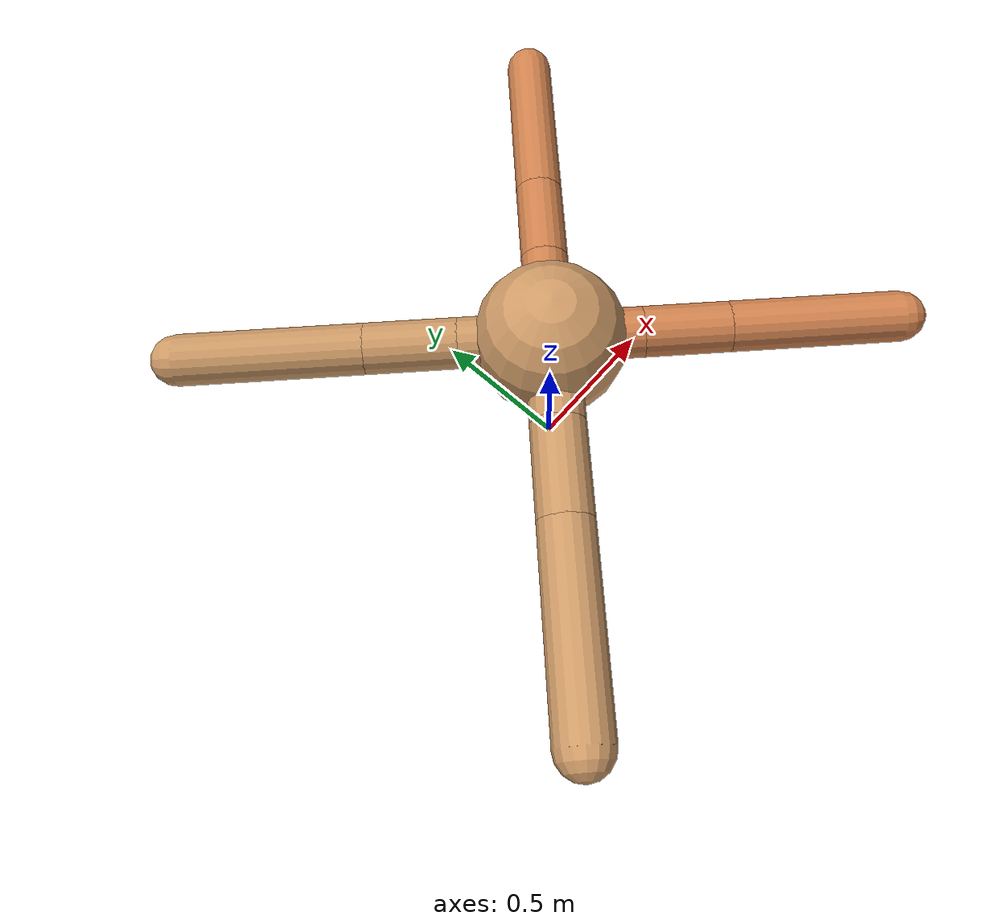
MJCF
<?xml version="1.0" ?>
<mujoco model="ant">

	<compiler angle="degree" coordinate="local" inertiafromgeom="true"/>

	<option integrator="RK4" timestep="0.01"/>

	<custom>

		<numeric data="0.0 0.0 0.55 1.0 0.0 0.0 0.0 0.0 1.0 0.0 -1.0 0.0 -1.0 0.0 1.0" name="init_qpos"/>

	</custom>

	<default>

		<joint armature="1" damping="1" limited="true"/>

		<geom conaffinity="0" condim="3" density="5.0" friction="1.5 0.1 0.1" margin="0.01" rgba="0.8 0.6 0.4 1"/>

	</default>

	<worldbody>

		<body name="torso" pos="0 0 0.75">

			<geom name="torso_geom" pos="0 0 0" size="0.2369907739660828" type="sphere"/>

			<!--joint armature="0" damping="0" limited="false" margin="0.01" name="root" pos="0 0 0" type="free"/-->

			<body name="front_left_leg" pos="0 0 0">

				<geom fromto="0 0 0 0.2 0.2 0" name="aux_1_geom" size="0.07541017719857113" type="capsule" rgba=".8 .5 .3 1"/>

				<body name="aux_1" pos="0.2 0.2 0">

					<joint axis="0 0 1" name="hip_1" pos="0.0 0.0 0.0" range="-40 40" type="hinge"/>

					<geom fromto="0 0 0 0.18518345400423356 0.18518345400423356 0" name="left_leg_geom" size="0.07541017719857113" type="capsule" rgba=".8 .5 .3 1"/>

					<body pos="0.18518345400423356 0.18518345400423356 0" name="front_left_foot">

						<joint axis="-1 1 0" name="ankle_1" pos="0.0 0.0 0.0" range="30 100" type="hinge"/>

						<geom fromto="0 0 0 0.3703669080084671 0.3703669080084671 0" name="left_ankle_geom" size="0.07541017719857113" type="capsule" rgba=".8 .5 .3 1"/>

					</body>

				</body>

			</body>

			<body name="front_right_leg" pos="0 0 0">

				<geom fromto="0 0 0 -0.2 0.2 0" name="aux_2_geom" size="0.07897585124599146" type="capsule"/>

				<body name="aux_2" pos="-0.2 0.2 0">

					<joint axis="0 0 1" name="hip_2" pos="0.0 0.0 0.0" range="-40 40" type="hinge"/>

					<geom fromto="0 0 0 -0.19944881380337373 0.19944881380337373 0" name="right_leg_geom" size="0.07897585124599146" type="capsule"/>

					<body pos="-0.19944881380337373 0.19944881380337373 0" name="front_right_foot">

						<joint axis="1 1 0" name="ankle_2" pos="0.0 0.0 0.0" range="-100 -30" type="hinge"/>

						<geom fromto="0 0 0 -0.39889762760674746 0.39889762760674746 0" name="right_ankle_geom" size="0.07897585124599146" type="capsule"/>

					</body>

				</body>

			</body>

			<body name="left_back_leg" pos="0 0 0">

				<geom fromto="0 0 0 -0.2 -0.2 0" name="aux_3_geom" size="0.08604178784520722" type="capsule"/>

				<body name="aux_3" pos="-0.2 -0.2 0">

					<joint axis="0 0 1" name="hip_3" pos="0.0 0.0 0.0" range="-40 40" type="hinge"/>

					<geom fromto="0 0 0 -0.20843366405157646 -0.20843366405157646 0" name="back_leg_geom" size="0.08604178784520722" type="capsule"/>

					<body pos="-0.20843366405157646 -0.20843366405157646 0" name="left_back_foot">

						<joint axis="-1 1 0" name="ankle_3" pos="0.0 0.0 0.0" range="-100 -30" type="hinge"/>

						<geom fromto="0 0 0 -0.4168673281031529 -0.4168673281031529 0" name="third_ankle_geom" size="0.08604178784520722" type="capsule"/>

					</body>

				</body>

			</body>

			<body name="right_back_leg" pos="0 0 0">

				<geom fromto="0 0 0 0.2 -0.2 0" name="aux_4_geom" size="0.07858638490311197" type="capsule" rgba=".8 .5 .3 1"/>

				<body name="aux_4" pos="0.2 -0.2 0">

					<joint axis="0 0 1" name="hip_4" pos="0.0 0.0 0.0" range="-40 40" type="hinge"/>

					<geom fromto="0 0 0 0.18758171347554345 -0.18758171347554345 0" name="rightback_leg_geom" size="0.07858638490311197" type="capsule" rgba=".8 .5 .3 1"/>

					<body pos="0.18758171347554345 -0.18758171347554345 0" name="right_back_foot">

						<joint axis="1 1 0" name="ankle_4" pos="0.0 0.0 0.0" range="30 100" type="hinge"/>

						<geom fromto="0 0 0 0.3751634269510869 -0.3751634269510869 0" name="fourth_ankle_geom" size="0.07858638490311197" type="capsule" rgba=".8 .5 .3 1"/>

					</body>

				</body>

			</body>

		</body>

	</worldbody>

	<actuator>

		<motor ctrllimited="true" ctrlrange="-1.0 1.0" joint="hip_4" gear="150"/>

		<motor ctrllimited="true" ctrlrange="-1.0 1.0" joint="ankle_4" gear="150"/>

		<motor ctrllimited="true" ctrlrange="-1.0 1.0" joint="hip_1" gear="150"/>

		<motor ctrllimited="true" ctrlrange="-1.0 1.0" joint="ankle_1" gear="150"/>

		<motor ctrllimited="true" ctrlrange="-1.0 1.0" joint="hip_2" gear="150"/>

		<motor ctrllimited="true" ctrlrange="-1.0 1.0" joint="ankle_2" gear="150"/>

		<motor ctrllimited="true" ctrlrange="-1.0 1.0" joint="hip_3" gear="150"/>

		<motor ctrllimited="true" ctrlrange="-1.0 1.0" joint="ankle_3" gear="150"/>

	</actuator>

</mujoco>
